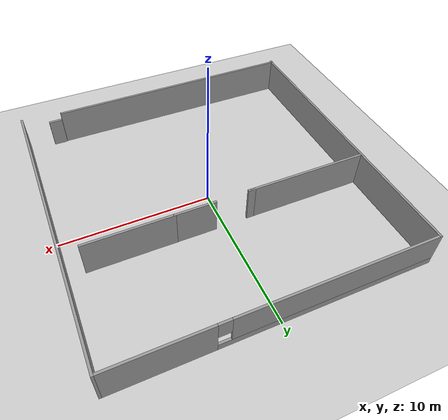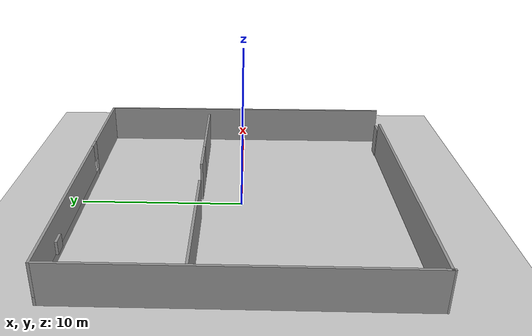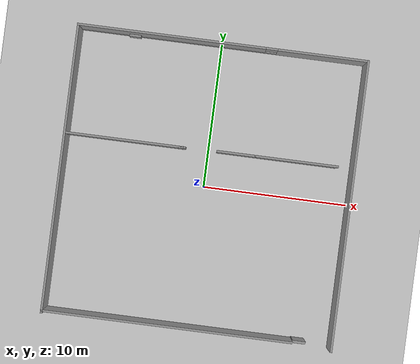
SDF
<sdf version="1.6">
 <world name="default">
  <light name="sun" type="directional">
   <pose>0 0 10 0 -0 0</pose>
   <diffuse>0.8 0.8 0.8 1</diffuse>
   <specular>0.2 0.2 0.2 1</specular>
   <attenuation>
    <range>1000</range>
    <constant>0.9</constant>
    <linear>0.01</linear>
    <quadratic>0.001</quadratic>
   </attenuation>
   <direction>-0.5 0.1 -0.9</direction>
  </light>
  <model name="ground_plane">
   <static>1</static>
   <link name="link">
    <collision name="collision">
     <geometry><plane><normal>0 0 1</normal><size>100 100</size></plane></geometry>
     <surface><friction><ode><mu>100</mu><mu2>50</mu2></ode></friction></surface>
    </collision>
    <visual name="visual">
     <cast_shadows>0</cast_shadows>
     <geometry><plane><normal>0 0 1</normal><size>100 100</size></plane></geometry>
     <material>
      <script><uri>file://media/materials/scripts/gazebo.material</uri><name>Gazebo/Grey</name></script>
     </material>
    </visual>
    <velocity_decay><linear>0</linear><angular>0</angular></velocity_decay>
   </link>
  </model>
  <physics name="default_physics" default="0" type="ode">
   <max_step_size>0.01</max_step_size>
   <real_time_factor>1</real_time_factor>
   <real_time_update_rate>100</real_time_update_rate>
  </physics>
  <scene><ambient>0.4 0.4 0.4 1</ambient><background>0.7 0.7 0.7 1</background><shadows>1</shadows></scene>
  <gravity>0 0 -9.8</gravity>
  <magnetic_field>6e-06 2.3e-05 -4.2e-05</magnetic_field>
  <atmosphere type="adiabatic"/>
  <spherical_coordinates>
   <surface_model>EARTH_WGS84</surface_model>
   <latitude_deg>0</latitude_deg>
   <longitude_deg>0</longitude_deg>
   <elevation>0</elevation>
   <heading_deg>0</heading_deg>
  </spherical_coordinates>
  <model name="wall2">
   <pose>0.066403 -0.031031 0 0 -0 0</pose>
   <link name="Door_0">
    <collision name="Door_0_Collision">
     <geometry><box><size>0.9 0.17 2</size></box></geometry>
     <pose>0 0 1 0 -0 0</pose>
    </collision>
    <visual name="Door_0_Visual">
     <pose>0 0 1 0 -0 0</pose>
     <geometry><box><size>0.9 0.17 2</size></box></geometry>
     <material>
      <script><uri>file://media/materials/scripts/gazebo.material</uri><name>Gazebo/Grey</name></script>
     </material>
    </visual>
    <pose>7.72142 -9.63786 0 0 -0 0</pose>
   </link>
   <link name="Wall_4">
    <collision name="Wall_4_Collision">
     <geometry><box><size>20 0.15 2.5</size></box></geometry>
     <pose>0 0 1.25 0 -0 0</pose>
    </collision>
    <visual name="Wall_4_Visual">
     <pose>0 0 1.25 0 -0 0</pose>
     <geometry><box><size>20 0.15 2.5</size></box></geometry>
     <material>
      <script><uri>file://media/materials/scripts/gazebo.material</uri><name>Gazebo/Grey</name></script>
      <ambient>1 1 1 1</ambient>
     </material>
     <meta><layer>0</layer></meta>
    </visual>
    <pose>9.925 -0 0 0 -0 1.5708</pose>
   </link>
   <link name="Wall_5">
    <pose>0 9.925 0 0 -0 3.14159</pose>
    <visual name="Wall_5_Visual_0">
     <pose>-6.86711 0 1.25 0 -0 0</pose>
     <geometry><box><size>6.26578 0.15 2.5</size></box></geometry>
     <material>
      <script><uri>file://media/materials/scripts/gazebo.material</uri><name>Gazebo/Grey</name></script>
      <ambient>1 1 1 1</ambient>
     </material>
     <meta><layer>0</layer></meta>
    </visual>
    <collision name="Wall_5_Collision_0">
     <geometry><box><size>6.26578 0.15 2.5</size></box></geometry>
     <pose>-6.86711 0 1.25 0 -0 0</pose>
    </collision>
    <visual name="Wall_5_Visual_1">
     <pose>3.13289 0 0.25 0 -0 0</pose>
     <geometry><box><size>13.7342 0.15 0.5</size></box></geometry>
     <material>
      <script><uri>file://media/materials/scripts/gazebo.material</uri><name>Gazebo/Grey</name></script>
      <ambient>1 1 1 1</ambient>
     </material>
     <meta><layer>0</layer></meta>
    </visual>
    <collision name="Wall_5_Collision_1">
     <geometry><box><size>13.7342 0.15 0.5</size></box></geometry>
     <pose>3.13289 0 0.25 0 -0 0</pose>
    </collision>
    <visual name="Wall_5_Visual_2">
     <pose>3.53289 0 1.5 0 -0 0</pose>
     <geometry><box><size>12.9342 0.15 2</size></box></geometry>
     <material>
      <script><uri>file://media/materials/scripts/gazebo.material</uri><name>Gazebo/Grey</name></script>
      <ambient>1 1 1 1</ambient>
     </material>
     <meta><layer>0</layer></meta>
    </visual>
    <collision name="Wall_5_Collision_2">
     <geometry><box><size>12.9342 0.15 2</size></box></geometry>
     <pose>3.53289 0 1.5 0 -0 0</pose>
    </collision>
    <visual name="Wall_5_Visual_3">
     <pose>-3.33422 0 1.9 0 -0 0</pose>
     <geometry><box><size>0.8 0.15 1.2</size></box></geometry>
     <material>
      <script><uri>file://media/materials/scripts/gazebo.material</uri><name>Gazebo/Grey</name></script>
      <ambient>1 1 1 1</ambient>
     </material>
     <meta><layer>0</layer></meta>
    </visual>
    <collision name="Wall_5_Collision_3">
     <geometry><box><size>0.8 0.15 1.2</size></box></geometry>
     <pose>-3.33422 0 1.9 0 -0 0</pose>
    </collision>
   </link>
   <link name="Wall_6">
    <collision name="Wall_6_Collision">
     <geometry><box><size>19.75 0.15 2.5</size></box></geometry>
     <pose>0 0 1.25 0 -0 0</pose>
    </collision>
    <visual name="Wall_6_Visual">
     <pose>0 0 1.25 0 -0 0</pose>
     <geometry><box><size>19.75 0.15 2.5</size></box></geometry>
     <material>
      <script><uri>file://media/materials/scripts/gazebo.material</uri><name>Gazebo/Grey</name></script>
      <ambient>1 1 1 1</ambient>
     </material>
     <meta><layer>0</layer></meta>
    </visual>
    <pose>-9.925 0.125 0 0 -0 -1.5708</pose>
   </link>
   <link name="Wall_7">
    <collision name="Wall_7_Collision">
     <geometry><box><size>0.25 0.15 2.5</size></box></geometry>
     <pose>0 0 1.25 0 -0 0</pose>
    </collision>
    <visual name="Wall_7_Visual">
     <pose>0 0 1.25 0 -0 0</pose>
     <geometry><box><size>0.25 0.15 2.5</size></box></geometry>
     <material>
      <script><uri>file://media/materials/scripts/gazebo.material</uri><name>Gazebo/Grey</name></script>
      <ambient>1 1 1 1</ambient>
     </material>
     <meta><layer>0</layer></meta>
    </visual>
    <pose>-9.925 -9.725 0 0 -0 -1.5708</pose>
   </link>
   <link name="Wall_9">
    <collision name="Wall_9_Collision">
     <geometry><box><size>17.25 0.15 2.5</size></box></geometry>
     <pose>0 0 1.25 0 -0 0</pose>
    </collision>
    <visual name="Wall_9_Visual">
     <pose>0 0 1.25 0 -0 0</pose>
     <geometry><box><size>17.25 0.15 2.5</size></box></geometry>
     <material>
      <script><uri>file://media/materials/scripts/gazebo.material</uri><name>Gazebo/Grey</name></script>
      <ambient>1 1 1 1</ambient>
     </material>
     <meta><layer>0</layer></meta>
    </visual>
    <pose>-1.375 -9.675 0 0 -0 0</pose>
   </link>
   <link name="Window_0">
    <collision name="Window_0_Collision">
     <geometry><box><size>0.8 0.17 0.8</size></box></geometry>
     <pose>0 0 0.4 0 -0 0</pose>
    </collision>
    <visual name="Window_0_Visual">
     <pose>0 0 0.4 0 -0 0</pose>
     <geometry><box><size>0.8 0.17 0.8</size></box></geometry>
     <material>
      <script><uri>file://media/materials/scripts/gazebo.material</uri><name>Gazebo/Grey</name></script>
     </material>
    </visual>
    <pose>-6.08222 9.78355 0.5 0 -0 0</pose>
   </link>
   <static>1</static>
  </model>
  <model name="wall6">
   <pose>-0.459534 2.51812 0 0 -0 0</pose>
   <link name="Wall_10">
    <collision name="Wall_10_Collision">
     <geometry><box><size>2.75 0.15 2.5</size></box></geometry>
     <pose>0 0 1.25 0 -0 0</pose>
    </collision>
    <visual name="Wall_10_Visual">
     <pose>0 0 1.25 0 -0 0</pose>
     <geometry><box><size>2.75 0.15 2.5</size></box></geometry>
     <material>
      <script><uri>file://media/materials/scripts/gazebo.material</uri><name>Gazebo/Grey</name></script>
      <ambient>1 1 1 1</ambient>
     </material>
     <meta><layer>0</layer></meta>
    </visual>
    <pose>2.38558 0.020916 0 0 -0 3.14159</pose>
   </link>
   <link name="Wall_12">
    <collision name="Wall_12_Collision">
     <geometry><box><size>5.75 0.15 2.5</size></box></geometry>
     <pose>0 0 1.25 0 -0 0</pose>
    </collision>
    <visual name="Wall_12_Visual">
     <pose>0 0 1.25 0 -0 0</pose>
     <geometry><box><size>5.75 0.15 2.5</size></box></geometry>
     <material>
      <script><uri>file://media/materials/scripts/gazebo.material</uri><name>Gazebo/Grey</name></script>
      <ambient>1 1 1 1</ambient>
     </material>
     <meta><layer>0</layer></meta>
    </visual>
    <pose>6.48558 0.020916 0 0 -0 0</pose>
   </link>
   <link name="Wall_6">
    <collision name="Wall_6_Collision">
     <geometry><box><size>0.5 0.15 2.5</size></box></geometry>
     <pose>0 0 1.25 0 -0 0</pose>
    </collision>
    <visual name="Wall_6_Visual">
     <pose>0 0 1.25 0 -0 0</pose>
     <geometry><box><size>0.5 0.15 2.5</size></box></geometry>
     <material>
      <script><uri>file://media/materials/scripts/gazebo.material</uri><name>Gazebo/Grey</name></script>
      <ambient>1 1 1 1</ambient>
     </material>
     <meta><layer>0</layer></meta>
    </visual>
    <pose>-1.36058 -0.020916 0 0 -0 0</pose>
   </link>
   <link name="Wall_7">
    <collision name="Wall_7_Collision">
     <geometry><box><size>8.25 0.15 2.5</size></box></geometry>
     <pose>0 0 1.25 0 -0 0</pose>
    </collision>
    <visual name="Wall_7_Visual">
     <pose>0 0 1.25 0 -0 0</pose>
     <geometry><box><size>8.25 0.15 2.5</size></box></geometry>
     <material>
      <script><uri>file://media/materials/scripts/gazebo.material</uri><name>Gazebo/Grey</name></script>
      <ambient>1 1 1 1</ambient>
     </material>
     <meta><layer>0</layer></meta>
    </visual>
    <pose>-5.23558 -0.020916 0 0 -0 3.14159</pose>
   </link>
   <static>1</static>
  </model>
 </world>
</sdf>
